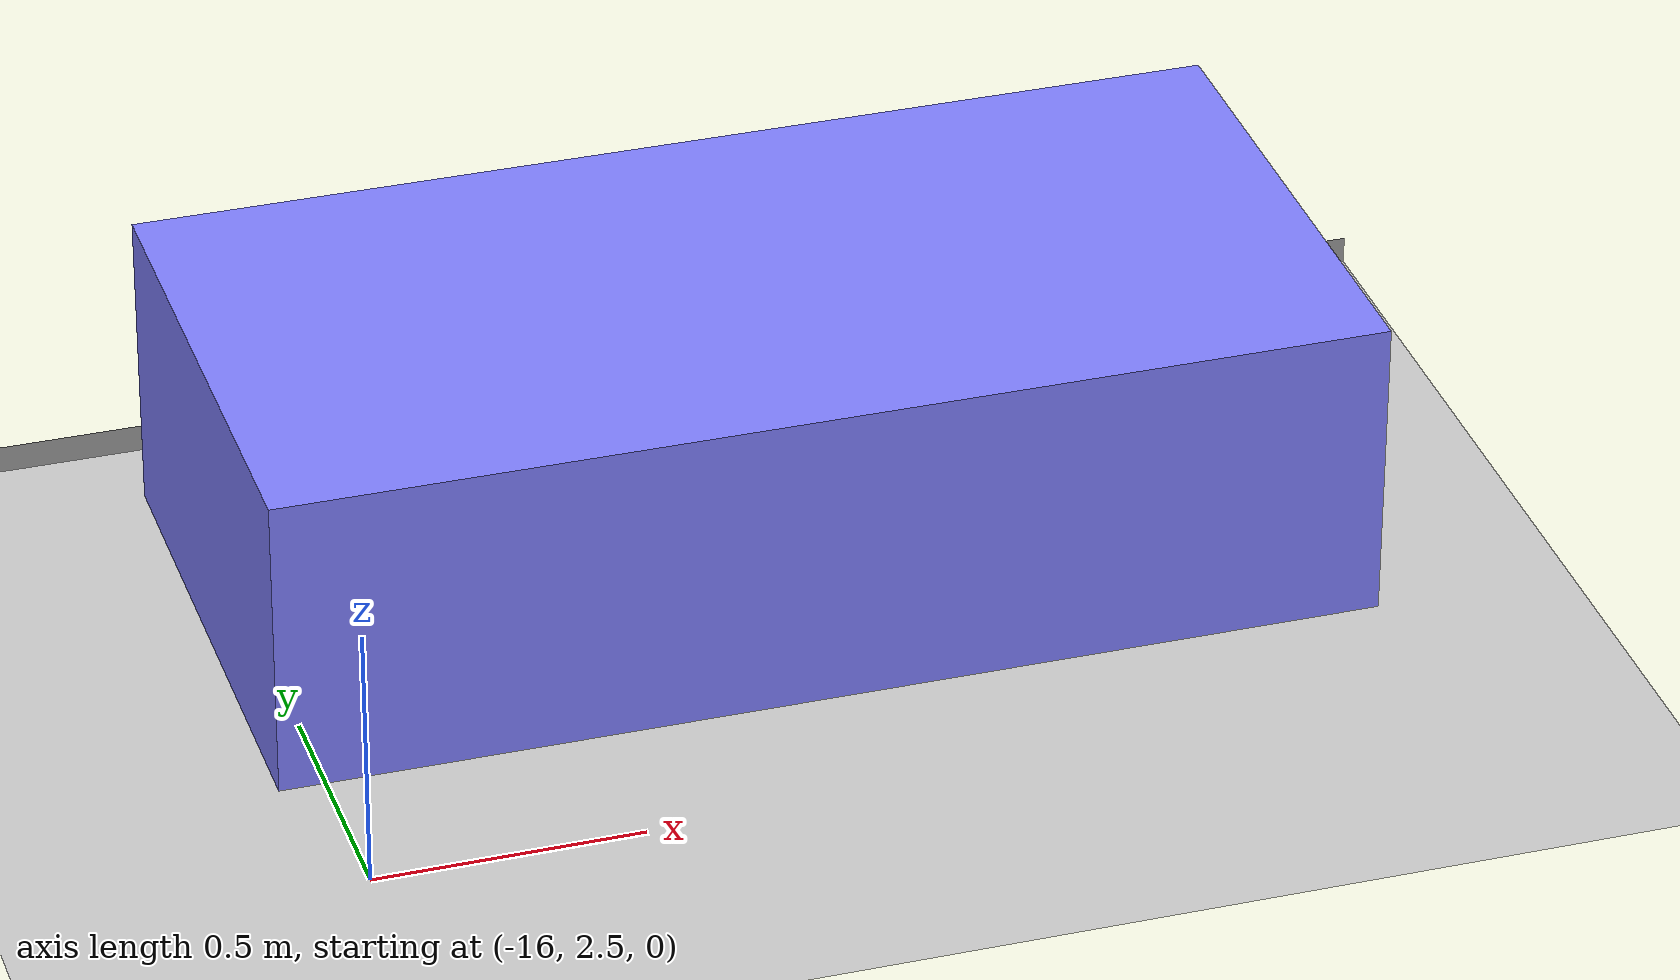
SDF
<sdf version="1.6">
 <world name="default">
  <model name="ground_plane">
   <static>1</static>
   <link name="link">
    <collision name="collision">
     <geometry><plane><normal>0 0 1</normal><size>100 100</size></plane></geometry>
     <surface>
      <contact><collide_bitmask>65535</collide_bitmask></contact>
      <friction><ode><mu>100</mu><mu2>50</mu2></ode></friction>
     </surface>
    </collision>
    <visual name="visual">
     <cast_shadows>0</cast_shadows>
     <geometry><plane><normal>0 0 1</normal><size>100 100</size></plane></geometry>
     <material>
      <script><uri>file://media/materials/scripts/gazebo.material</uri><name>Gazebo/Grey</name></script>
     </material>
    </visual>
   </link>
  </model>
  <model name="ground_plane_0">
   <static>1</static>
   <link name="link">
    <collision name="collision">
     <geometry><plane><normal>0 0 1</normal><size>100 100</size></plane></geometry>
     <surface>
      <contact><collide_bitmask>65535</collide_bitmask></contact>
      <friction><ode><mu>100</mu><mu2>50</mu2></ode></friction>
     </surface>
    </collision>
    <visual name="visual">
     <cast_shadows>0</cast_shadows>
     <geometry><plane><normal>0 0 1</normal><size>100 100</size></plane></geometry>
     <material>
      <script><uri>file://media/materials/scripts/gazebo.material</uri><name>Gazebo/Grey</name></script>
     </material>
    </visual>
   </link>
   <pose>-0.019574 99.5796 0 0 -0 0</pose>
  </model>
  <model name="simulated_vehicle">
   <pose>-15 3 0.325 0 0 0.0</pose>
   <link name="chassis">
    <pose>-0.151427 -0 0.175 0 -0 0</pose>
    <inertial>
     <mass>1.14395</mass>
     <inertia>
      <ixx>0.126164</ixx>
      <ixy>0</ixy>
      <ixz>0</ixz>
      <iyy>0.416519</iyy>
      <iyz>0</iyz>
      <izz>0.481014</izz>
     </inertia>
    </inertial>
    <visual name="visual">
     <geometry><box><size>2.01142 1 0.568726</size></box></geometry>
     <material>
      <ambient>0.5 0.5 1.0 1</ambient>
      <diffuse>0.5 0.5 1.0 1</diffuse>
      <specular>0.0 0.0 1.0 1</specular>
     </material>
    </visual>
    <collision name="collision"><geometry><box><size>2.01142 1 0.568726</size></box></geometry></collision>
   </link>
  </model>
 </world>
</sdf>
